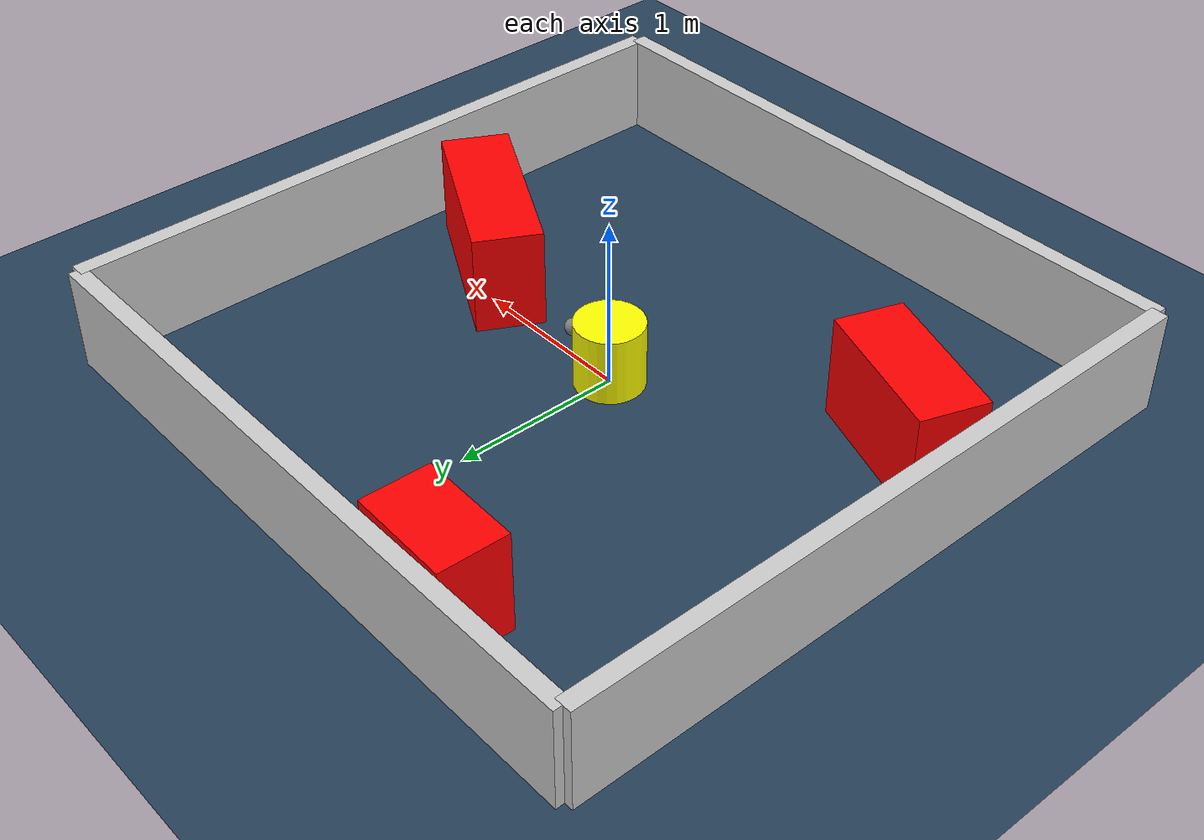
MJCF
<?xml version="1.0" ?>
<mujoco model="generated_environment">
  <option timestep="0.01" integrator="RK4" cone="elliptic"/>
  <default>
    <geom density="1"/>
  </default>
  <asset>
    <texture builtin="gradient" height="3072" rgb1="0.3 0.5 0.7" rgb2="0 0 0" type="skybox" width="512"/>
    <texture builtin="checker" height="300" mark="edge" markrgb="0.8 0.8 0.8" name="groundplane" rgb1="0.2 0.3 0.4" rgb2="0.1 0.2 0.3" type="2d" width="300"/>
    <material name="groundplane" reflectance="0.2" texrepeat="5 5" texture="groundplane" texuniform="true"/>
    <material name="robot" rgba="0.0 1.0 0.0 1"/>
  </asset>
  <worldbody>
    <light dir="0 0 -1" directional="true" pos="0 0 1.5"/>
    <geom condim="4" friction="1.0 0.005 0.001" material="groundplane" name="floor" size="0 0 0.05" type="plane"/>
    <body name="walls">
      <geom name="wall_1" condim="4" pos="-2.0 0.0 0.3" rgba="0.800000011920929 0.800000011920929 0.800000011920929 1.0" size="0.05 2.0 0.3" type="box"/>
      <geom name="wall_2" condim="4" pos="2.0 0.0 0.3" rgba="0.800000011920929 0.800000011920929 0.800000011920929 1.0" size="0.05 2.0 0.3" type="box"/>
      <geom name="wall_3" condim="4" pos="0.0 -2.0 0.3" rgba="0.800000011920929 0.800000011920929 0.800000011920929 1.0" size="2.0 0.05 0.3" type="box"/>
      <geom name="wall_4" condim="4" pos="0.0 2.0 0.3" rgba="0.800000011920929 0.800000011920929 0.800000011920929 1.0" size="2.0 0.05 0.3" type="box"/>
    </body>
    <body name="robot">
      <joint name="joint_x" type="slide" pos="0 0 0" axis="1 0 0"/>
      <joint name="joint_y" type="slide" pos="0 0 0" axis="0 1 0"/>
      <geom name="robot" type="sphere" pos="0.3 0.0 0.2" size="0.05" mass="5." friction="1.0 0.005 0.0001" condim="4" rgba="0.5 0.5 0.5 1.0"/>
      <site name="sensor_ball"/>
    </body>
    <body name="obstacle_movable_1">
      <geom name="obstacle_movable_1" condim="4" pos="0.0 0.0 0.2" euler="0 0 0.0" friction="1.0 0.005 0.001" rgba="1.0 1.0 0.0 1.0" size="0.2 0.2 0.0" type="cylinder" mass="0.1"/>
      <joint type="free"/>
    </body>
    <body name="obstacle_2_static">
      <geom name="obstacle_2_static" condim="4" pos="-0.7850669055115775 1.7279430320837024 0.3" euler="0 0 178.49545660449118" friction="1.0 0.005 0.001" rgba="1 0 0 1" size="0.3059722164615533 0.2 0.3" type="box"/>
    </body>
    <body name="obstacle_3_static">
      <geom name="obstacle_3_static" condim="4" pos="-1.4251660692880093 -0.7328978450979744 0.3" euler="0 0 340.3817884530296" friction="1.0 0.005 0.001" rgba="1 0 0 1" size="0.4393425160755293 0.2 0.3" type="box"/>
    </body>
    <body name="obstacle_4_static">
      <geom name="obstacle_4_static" condim="4" pos="1.2202883647906546 -0.17060237524439548 0.3" euler="0 0 331.61578663508885" friction="1.0 0.005 0.001" rgba="1 0 0 1" size="0.5508545814780005 0.2 0.3" type="box"/>
    </body>
  </worldbody>
  <actuator>
    <motor name="actuator_x" joint="joint_x" gear="1" ctrlrange="-1 1"/>
    <motor name="actuator_y" joint="joint_y" gear="1" ctrlrange="-1 1"/>
  </actuator>
</mujoco>
